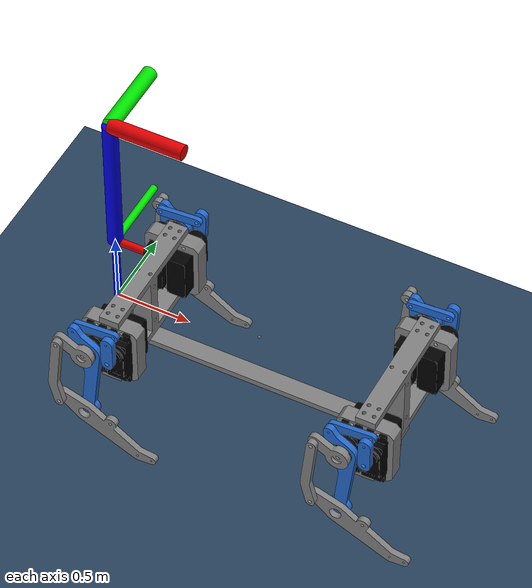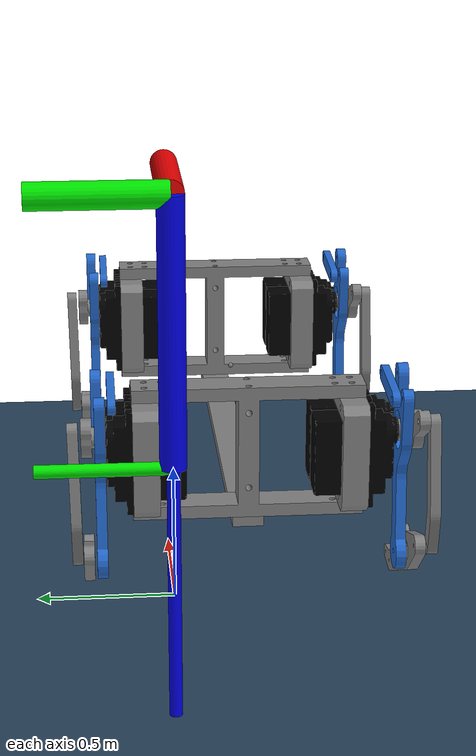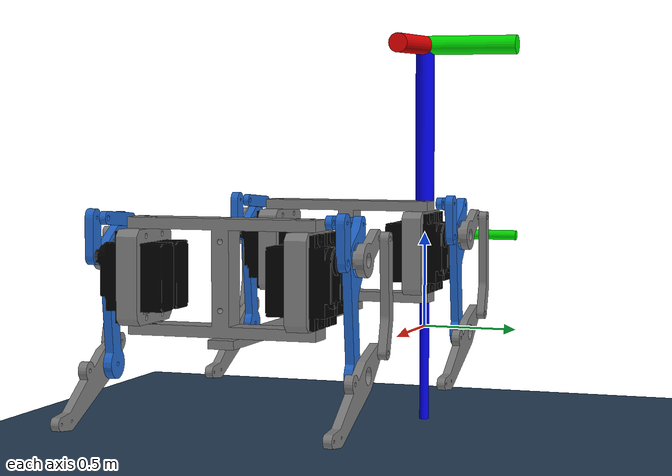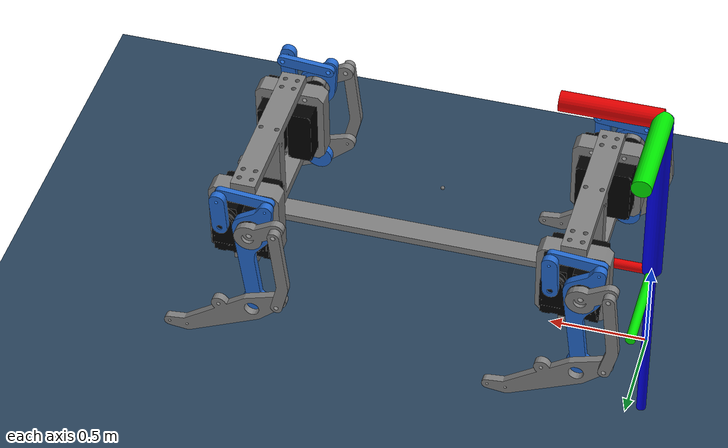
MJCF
<mujoco model="quaid">
    <compiler inertiafromgeom="true" angle="degree" coordinate="local"/>
    <option timestep="0.005" gravity="0 0 -9.81" iterations="20" integrator="RK4" >
        <!-- this was deprecated in 3.14 - you need to add your own noise now -->
        <flag sensornoise="enable" />
    </option>

    <asset>
        <texture type="skybox" builtin="gradient" rgb1="0.3 0.5 0.7" rgb2="0 0 0" width="512" height="3072"/>
        <texture type="2d" name="groundplane" builtin="checker" mark="edge" rgb1="0.2 0.3 0.4"
                 rgb2="0.1 0.2 0.3" markrgb="0.8 0.8 0.8" width="300" height="300"/>
        <material name="groundplane" texture="groundplane" texuniform="true" texrepeat="5 5" reflectance="0.2"/>

        <mesh file="left_calf.stl" scale="1 1 1" />
        <mesh file="left_knee_horn.stl" scale="1 1 1" />
        <mesh file="left_knee_link.stl" scale="1 1 1" />
        <mesh file="left_thigh_servo.stl" scale="1 1 1" />
        <mesh file="left_knee_servo.stl" scale="1 1 1" />
        <mesh file="left_servo_mount.stl" scale="1 1 1" />
        <mesh file="left_thigh.stl" scale="1 1 1" />
        <mesh file="left_thigh_horn.stl" scale="1 1 1" />
        <mesh file="left_thigh_link.stl" scale="1 1 1" />
        <mesh file="right_calf.stl" scale="1 1 1" />
        <mesh file="right_knee_horn.stl" scale="1 1 1" />
        <mesh file="right_knee_link.stl" scale="1 1 1" />
        <mesh file="right_thigh_servo.stl" scale="1 1 1" />
        <mesh file="right_knee_servo.stl" scale="1 1 1" />
        <mesh file="right_servo_mount.stl" scale="1 1 1" />
        <mesh file="right_thigh.stl" scale="1 1 1" />
        <mesh file="right_thigh_horn.stl" scale="1 1 1" />
        <mesh file="right_thigh_link.stl" scale="1 1 1" />
        <mesh file="pelvis.stl" scale="1 1 1" />
        <mesh file="fuselage.stl" scale="1 1 1" />
    </asset>

    <default>
        <joint armature="1" damping="1" limited="true"/>
        <geom conaffinity="0" condim="3" density="300.0" margin="0.002" /> <!-- rgba="0.8 0.6 0.4 1" -->

        <default class="collision">
            <geom contype="1" group="3" type="capsule"/>
            <default class="collision-left">
                <geom contype="2" conaffinity="4"/>
            </default>
            <default class="collision-right">
                <geom contype="4" conaffinity="2"/>
            </default>
        </default>
    </default>

    <worldbody>
        <light pos="0 0 1"/>
        <light pos="0 -0.2 1" dir="0 0.2 -0.8" directional="true"/>
        <geom name="floor" size="0 0 0.05" type="plane" material="groundplane" pos="0 0 -0.5" friction="0.1"  conaffinity="1" condim="3"/>

        <body name="quaid" pos="2 0 0" euler="0 0 0">
            <!--   this will make it fall down -->
            <freejoint/>
            <geom name="fuselage" type="mesh" mesh="fuselage" euler="0 0 90" />
            <site name="imu" size="0.01" pos="-0.85 -0.3 0.5"/>
            <body name="front" pos="0 0 0" euler="0 0 90">
                <geom name="pelvis_front" type="mesh" mesh="pelvis" />

                <body name="leg_fl">
                    <geom name="servos_mount_fl" type="mesh" mesh="left_servo_mount"  />
                    <geom name="servo1_fl" type="mesh" mesh="left_thigh_servo" rgba="0 0 0 1"/>
                    <body name="thigh1_fl" pos="0 0 0">
                        <joint name="thigh_joint1_fl" type="hinge" pos="0.2 -0.15 0.515" axis="1 0 0" range="0.0 45.0" damping="10" limited="true" />
                        <geom name="thigh_horn_fl1" type="mesh" mesh="left_thigh_horn" rgba="0.137 0.408 0.8 1" />
                        <body name="thigh_link_b1_fl">
                            <joint name="thigh_link_joint1_fl" type="hinge" pos="0.2 -0.16 0.685" axis="1 0 0" damping="0.05" limited="false" />
                            <geom name="thigh_link1_fl" type="mesh" mesh="left_thigh_link"  rgba="0.137 0.408 0.8 1"  />
                        </body>
                    </body>

                    <body name="thigh_limb_b1_fl">
                        <joint name="thigh_limb_joint1_fl" type="hinge" pos="0.2 0.015 0.515" axis="1 0 0" damping="0.05" limited="false" />
                        <geom name="thigh_limb1_fl" type="mesh" mesh="left_thigh"  rgba="0.137 0.408 0.8 1"  />
                    </body>

                    <geom name="servo2_fl" type="mesh" mesh="left_knee_servo" rgba="0 0 0 1" />
                    <body name="knee_fl" >
                        <joint name="knee1_joint_fl" type="hinge" pos="0.2 0.015 0.515" axis="1 0 0" range="-25 25.0" damping="10" limited="true" />
                        <geom name="knee_horn1_fl" type="mesh" mesh="left_knee_horn" />
                        <body name="knee_link_b1_fl">
                            <joint name="knee1_link_joint_fl" type="hinge" pos="0.27 0.16 0.60" axis="1 0 0" damping="0.05" limited="false" />
                            <geom name="knee_link1_fl" type="mesh" mesh="left_knee_link" />
                            <body name="calf1_body_fl">
                                <joint name="calf1_joint_fl" type="hinge" pos="0.27 0.157 0.1" axis="1 0 0" damping="0.05" limited="false" />
                                <geom name="calf1_fl" type="mesh" mesh="left_calf" />
                            </body>
                        </body>
                    </body>
                </body>

                <body name="leg_fr" >
                    <geom name="servos_mount_fr" type="mesh" mesh="right_servo_mount" />
                    <geom name="servo1_fr" type="mesh" mesh="right_thigh_servo" rgba="0 0 0 1"/>
                    <body name="thigh1_fr" pos="0 0 0">
                        <joint name="thigh_joint1_fr" type="hinge" pos="-0.85 -0.15 0.515" axis="-1 0 0" range="-45.0 0" damping="10" limited="true" />
                        <geom name="thigh_horn_fr1" type="mesh" mesh="right_thigh_horn"  rgba="0.137 0.408 0.8 1" />
                        <body name="thigh_link_b1_fr">
                            <joint name="thigh_link_joint1_fr" type="hinge" pos="-0.85 -0.16 0.685" axis="-1 0 0" damping="0.05" limited="false" />
                            <geom name="thigh_link1_fr" type="mesh" mesh="right_thigh_link"  rgba="0.137 0.408 0.8 1" />
                        </body>
                    </body>

                    <body name="thigh_limb_b1_fr">
                        <joint name="thigh_limb_joint1_fr" type="hinge" pos="-0.85 0.015 0.515" axis="-1 0 0" damping="0.05" limited="false" />
                        <geom name="thigh_limb1_fr" type="mesh" mesh="right_thigh"  rgba="0.137 0.408 0.8 1" />
                    </body>

                    <geom name="servo2_fr" type="mesh" mesh="right_knee_servo" rgba="0 0 0 1" />
                    <body name="knee_fr" >
                        <joint name="knee1_joint_fr" type="hinge" pos="-0.85 0.015 0.515" axis="-1 0 0" range="-25.0 25.0" damping="10" limited="true" />
                        <geom name="knee_horn1_fr" type="mesh" mesh="right_knee_horn" />
                        <body name="knee_link_b1_fr">
                            <joint name="knee1_link_joint_fr" type="hinge" pos="-0.9 0.16 0.60" axis="-1 0 0" damping="0.05" limited="false" />
                            <geom name="knee_link1_fr" type="mesh" mesh="right_knee_link" />
                            <body name="calf1_body_fr">
                                <joint name="calf1_joint_fr" type="hinge" pos="-0.9 0.157 0.1" axis="-1 0 0" damping="0.05" limited="false" />
                                <geom name="calf1_fr" type="mesh" mesh="right_calf"  />
                            </body>
                        </body>
                    </body>
                </body>
            </body>

            <body name="back" pos="-1.70 0 0" euler="0 0 90">
                <geom name="pelvis_back" type="mesh" mesh="pelvis" />

                <body name="leg_bl">
                    <geom name="servos_mount_bl" type="mesh" mesh="left_servo_mount"  />
                    <geom name="servo1_bl" type="mesh" mesh="left_thigh_servo" rgba="0 0 0 1"/>
                    <body name="thigh1_bl" pos="0 0 0">
                        <joint name="thigh_joint1_bl" type="hinge" pos="0.2 -0.15 0.515" axis="1 0 0" range="0 45.0" damping="10" limited="true" />
                        <geom name="thigh_horn_bl1" type="mesh" mesh="left_thigh_horn" rgba="0.137 0.408 0.8 1" />
                        <body name="thigh_link_b1_bl">
                            <joint name="thigh_link_joint1_bl" type="hinge" pos="0.2 -0.16 0.685" axis="1 0 0" damping="0.05" limited="false" />
                            <geom name="thigh_link1_bl" type="mesh" mesh="left_thigh_link"  rgba="0.137 0.408 0.8 1"  />
                        </body>
                    </body>

                    <body name="thigh_limb_b1_bl">
                        <joint name="thigh_limb_joint1_bl" type="hinge" pos="0.2 0.015 0.515" axis="1 0 0" damping="0.05" limited="false" />
                        <geom name="thigh_limb1_bl" type="mesh" mesh="left_thigh"  rgba="0.137 0.408 0.8 1"  />
                    </body>

                    <geom name="servo2_bl" type="mesh" mesh="left_knee_servo" rgba="0 0 0 1" />
                    <body name="knee_bl" >
                        <joint name="knee1_joint_bl" type="hinge" pos="0.2 0.015 0.515" axis="1 0 0" range="-25.0 25.0" damping="10" limited="true" />
                        <geom name="knee_horn1_bl" type="mesh" mesh="left_knee_horn" />
                        <body name="knee_link_b1_bl">
                            <joint name="knee1_link_joint_bl" type="hinge" pos="0.27 0.16 0.60" axis="1 0 0" damping="0.05" limited="false" />
                            <geom name="knee_link1_bl" type="mesh" mesh="left_knee_link" />
                            <body name="calf1_body_bl">
                                <joint name="calf1_joint_bl" type="hinge" pos="0.27 0.157 0.1" axis="1 0 0" damping="0.05" limited="false" />
                                <geom name="calf1_bl" type="mesh" mesh="left_calf" />
                            </body>
                        </body>
                    </body>
                </body>

                <body name="leg_br" >
                    <geom name="servos_mount_br" type="mesh" mesh="right_servo_mount" />
                    <geom name="servo1_br" type="mesh" mesh="right_thigh_servo" rgba="0 0 0 1"/>
                    <body name="thigh1_br" pos="0 0 0">
                        <joint name="thigh_joint1_br" type="hinge" pos="-0.85 -0.15 0.515" axis="-1 0 0" range="-45.0 0" damping="10" limited="true" />
                        <geom name="thigh_horn_br1" type="mesh" mesh="right_thigh_horn"  rgba="0.137 0.408 0.8 1" />
                        <body name="thigh_link_b1_br">
                            <joint name="thigh_link_joint1_br" type="hinge" pos="-0.85 -0.16 0.685" axis="-1 0 0" damping="0.05" limited="false" />
                            <geom name="thigh_link1_br" type="mesh" mesh="right_thigh_link"  rgba="0.137 0.408 0.8 1" />
                        </body>
                    </body>

                    <body name="thigh_limb_b1_br">
                        <joint name="thigh_limb_joint1_br" type="hinge" pos="-0.85 0.015 0.515" axis="-1 0 0" damping="0.05" limited="false" />
                        <geom name="thigh_limb1_br" type="mesh" mesh="right_thigh"  rgba="0.137 0.408 0.8 1" />
                    </body>

                    <geom name="servo2_br" type="mesh" mesh="right_knee_servo" rgba="0 0 0 1" />
                    <body name="knee_br" >
                        <joint name="knee1_joint_br" type="hinge" pos="-0.85 0.015 0.515" axis="-1 0 0" range="-25.0 25.0" damping="10" limited="true" />
                        <geom name="knee_horn1_br" type="mesh" mesh="right_knee_horn" />
                        <body name="knee_link_b1_br">
                            <joint name="knee1_link_joint_br" type="hinge" pos="-0.9 0.16 0.60" axis="-1 0 0" damping="0.05" limited="false" />
                            <geom name="knee_link1_br" type="mesh" mesh="right_knee_link" />
                            <body name="calf1_body_br">
                                <joint name="calf1_joint_br" type="hinge" pos="-0.9 0.157 0.1" axis="-1 0 0" damping="0.05" limited="false" />
                                <geom name="calf1_br" type="mesh" mesh="right_calf"  />
                            </body>
                        </body>
                    </body>
                </body>
            </body>

        </body>

        <body name="frame_reference" pos="0 0 0" mocap="true">
            <geom type="cylinder" size="0.025 0.5" rgba="0 0 .9 1" />
            <geom type="cylinder" size="0.025 0.25" rgba=".9 0 0 1" euler="0 90 0" pos="0.25 0 .5"/>
            <geom type="cylinder" size="0.025 0.25" rgba="0 .9 0 1" euler="90 0 0" pos="0.0 0.25 .5"/>
        </body>

        <body name="marker" pos="0 0 1" mocap="true">
            <geom type="cylinder" size="0.05 0.5" rgba="0 0 .9 1" />
            <geom type="cylinder" size="0.05 0.25" rgba=".9 0 0 1" euler="0 90 0" pos="0.25 0 .5"/>
            <geom type="cylinder" size="0.05 0.25" rgba="0 .9 0 1" euler="90 0 0" pos="0.0 0.25 .5"/>
        </body>

    </worldbody>

    <equality>
        <!-- These could also be equality/joint -->
        <connect body1="thigh_link_b1_fl" body2="thigh_limb_b1_fl" anchor="0.24 0.09 0.665"/>
        <connect body1="calf1_body_fl" body2="thigh_limb_b1_fl" anchor="0.28 0.01 0.015"/>
        <connect body1="thigh_link_b1_fr" body2="thigh_limb_b1_fr" anchor="-0.85 0.09 0.665"/>
        <connect body1="calf1_body_fr" body2="thigh_limb_b1_fr" anchor="-0.9 0.01 0.015"/>

        <connect body1="thigh_link_b1_bl" body2="thigh_limb_b1_bl" anchor="0.24 0.09 0.665"/>
        <connect body1="calf1_body_bl" body2="thigh_limb_b1_bl" anchor="0.28 0.01 0.015"/>
        <connect body1="thigh_link_b1_br" body2="thigh_limb_b1_br" anchor="-0.85 0.09 0.665"/>
        <connect body1="calf1_body_br" body2="thigh_limb_b1_br" anchor="-0.9 0.01 0.015"/>
    </equality>

    <actuator>
        <position joint="knee1_joint_fl" ctrlrange="-1.0 1.0"
                  kp="1000"
                  ctrllimited="true" name="knee_servo1_fl"/>
        <velocity joint="knee1_joint_fl" kv="100" name="knee1_velocity_fl" />

        <position joint="thigh_joint1_fl" ctrlrange="0 1.0"
                  kp="1000"
                  ctrllimited="true" name="thigh_servo1_fl"/>
        <velocity joint="thigh_joint1_fl" kv="100" name="thigh1_velocity_fl" />

        <position joint="knee1_joint_fr" ctrlrange="-1.0 1.0"
                  kp="1000"
                  ctrllimited="true" name="knee_servo1_fr"/>
        <velocity joint="knee1_joint_fr" kv="100" name="knee1_velocity_fr" />

        <position joint="thigh_joint1_fr" ctrlrange="-1.0 0"
                  kp="1000"
                  ctrllimited="true" name="thigh_servo1_fr"/>
        <velocity joint="thigh_joint1_fr" kv="100" name="thigh1_velocity_fr" />

        <position joint="knee1_joint_bl" ctrlrange="-1.0 1.0"
                  kp="1000"
                  ctrllimited="true" name="knee_servo1_bl"/>
        <velocity joint="knee1_joint_bl" kv="100" name="knee1_velocity_bl" />

        <position joint="thigh_joint1_bl" ctrlrange="0 1.0"
                  kp="1000"
                  ctrllimited="true" name="thigh_servo1_bl"/>
        <velocity joint="thigh_joint1_bl" kv="100" name="thigh1_velocity_bl" />

        <position joint="knee1_joint_br" ctrlrange="-1.0 1.0"
                  kp="1000"
                  ctrllimited="true" name="knee_servo1_br"/>
        <velocity joint="knee1_joint_br" kv="100" name="knee1_velocity_br" />

        <position joint="thigh_joint1_br" ctrlrange="-1.0 0"
                  kp="1000"
                  ctrllimited="true" name="thigh_servo1_br"/>
        <velocity joint="thigh_joint1_br" kv="100" name="thigh1_velocity_br" />
    </actuator>

    <sensor>
        <framequat name="orientation" objtype="site" objname="imu" noise="0.0"/>
        <framepos name="position" objtype="site" objname="imu" noise="0.0"/>
        <gyro name="gyro" site="imu" /> <!--  noise="5e-4" cutoff="34.9" -->
        <accelerometer name="acceleration" site="imu" /> <!-- noise="1e-2" cutoff="157" -->
        <magnetometer name="magnetometer" site="imu"/>
    </sensor>
</mujoco>
